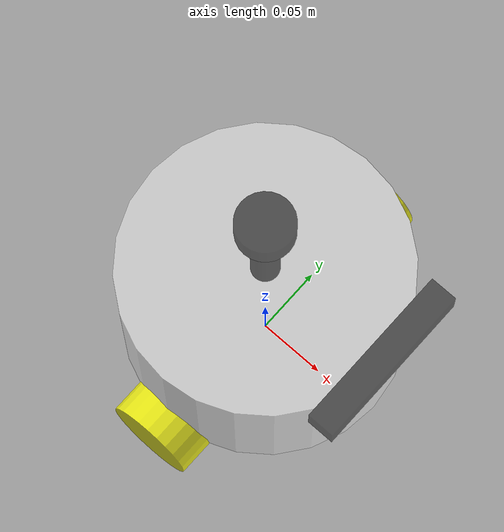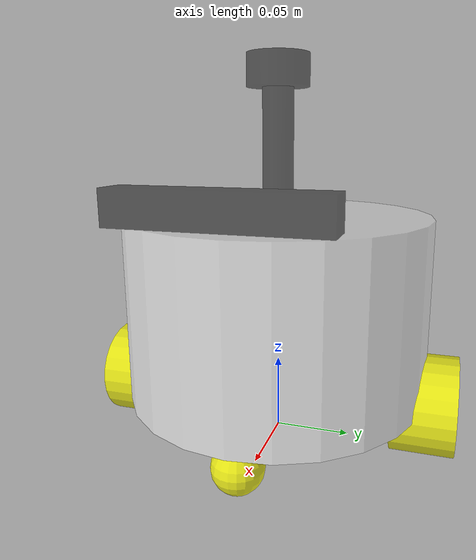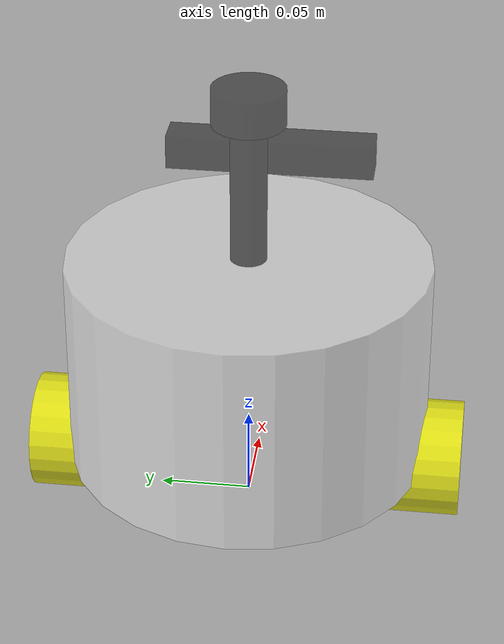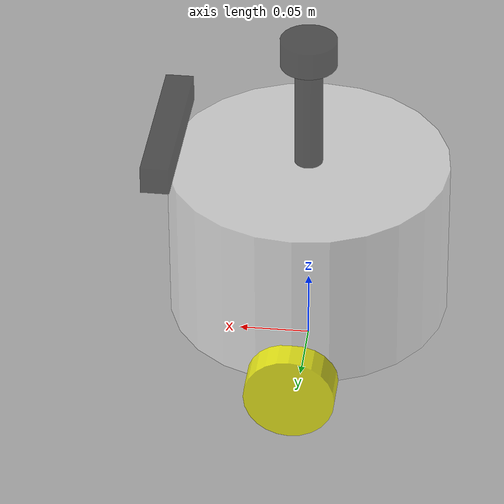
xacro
<?xml version="1.0"?>
<robot xmlns:xacro="http://www.ros.org/wiki/xacro" name="fishbot">
    <!-- base -->
    <xacro:include filename="$(find fishbot_description)/urdf/fishbot/base.urdf.xacro"/>
    <!-- sensor -->
    <xacro:include filename="$(find fishbot_description)/urdf/fishbot/sensor/camera.urdf.xacro"/>
    <xacro:include filename="$(find fishbot_description)/urdf/fishbot/sensor/imu.urdf.xacro"/>
    <xacro:include filename="$(find fishbot_description)/urdf/fishbot/sensor/laser.urdf.xacro"/>
    <!-- actuator -->
    <xacro:include filename="$(find fishbot_description)/urdf/fishbot/actuator/wheel.urdf.xacro"/>
    <xacro:include filename="$(find fishbot_description)/urdf/fishbot/actuator/caster.urdf.xacro"/>
    <!--plugins-->
    <xacro:include filename="$(find fishbot_description)/urdf/fishbot/plugins/gazebo_control_plugin.xacro"/>
    <xacro:include filename="$(find fishbot_description)/urdf/fishbot/plugins/gazebo_sensor_plugin.xacro"/>

    <xacro:base_xacro length="0.12" radius="0.1"/>
    <xacro:imu_xacro xyz="0.0 0.0 0.02"/>
    <xacro:camera_xacro xyz="0.10 0.0 0.075"/>
    <xacro:laser_xacro xyz="0.0 0.0 0.10"/>

    <xacro:wheel_xacro wheel_name="left_wheel" xyz="0 0.1 -0.06"/>
    <xacro:wheel_xacro wheel_name="right_wheel" xyz="0 -0.1 -0.06"/>
    <xacro:caster_xacro caster_name="front_caster" xyz="0.08 0.0 -0.076"/>
    <xacro:caster_xacro caster_name="back_caster" xyz="0.08 0.0 -0.076"/>
    <!-- Add additional links, joints, and macros as needed -->

    <xacro:gazebo_control_plugin />
    <xacro:gazebo_sensor_plugin />

</robot>

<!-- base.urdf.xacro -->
<robot xmlns:xacro="http://www.ros.org/wiki/xacro">

    <xacro:include filename="$(find fishbot_description)/urdf/fishbot/common_inertia.xacro"/>

    <xacro:macro name="base_xacro" params = "length radius" >
        <link name="base_footprint"/>

        <link name="base_link">
            <visual>
                <origin xyz="0.0 0.0 0.0" rpy="0.0 0.0 0.0"/>

                <geometry>
                    <cylinder radius="${radius}" length="${length}"/>
                </geometry>

                <material name="white">
                    <color rgba="1.0 1.0 1.0 0.5"/>
                </material>
            </visual>
            <collision>
                <origin xyz="0.0 0.0 0.0" rpy="0.0 0.0 0.0"/>

                <geometry>
                    <cylinder radius="${radius}" length="${length}"/>
                </geometry>

                <material name="white">
                    <color rgba="1.0 1.0 1.0 0.5"/>
                </material>
            </collision>

            <xacro:cylinder_inertia m="1.0" r="${radius}" h="${length}"/>
        </link>
        <joint name="base_footprint_joint" type="fixed">
            <parent link="base_footprint"/>
            <child link="base_link"/>
            <origin xyz="0.0 0.0 ${length/2.0+0.032-0.001}" rpy="0.0 0.0 0.0"/>
        </joint>

    </xacro:macro>
</robot>

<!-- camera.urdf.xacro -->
<robot xmlns:xacro="http://www.ros.org/wiki/xacro" >
        <xacro:include filename="$(find fishbot_description)/urdf/fishbot/common_inertia.xacro"/>

    <!--IMU-->
    <xacro:macro name="camera_xacro" params = "xyz" >

        <link name="camera_link">
            <visual>
                <origin xyz="0.0 0.0 0.0" rpy="0.0 0.0 0.0"/>

                <geometry>
                    <box size="0.02 0.12 0.02"/>
                </geometry>

                <material name="blue">
                    <color rgba="0.0 0.0 0.0 0.5"/>
                </material>
            </visual>

            <collision>
                <origin xyz="0.0 0.0 0.0" rpy="0.0 0.0 0.0"/>

                <geometry>
                    <box size="0.02 0.12 0.02"/>
                </geometry>

                <material name="blue">
                    <color rgba="0.0 0.0 0.0 0.5"/>
                </material>
            </collision>
            <xacro:box_inertia m="0.1" w="0.02" h="0.10" d="0.02"/>
        </link>

        <link name="camera_optical_link">
        </link>

        <joint name="camera_joint" type="fixed">
            <parent link="base_link"/>
            <child link="camera_link"/>
            <origin xyz="${xyz}" rpy="0.0 0.0 0.0"/>

        </joint>

        <joint name="camera_optical_joint" type="fixed">
            <parent link="camera_link"/>
            <child link="camera_optical_link"/>
            <origin xyz="0.0 0.0 0.0" rpy="${-pi/2} 0.0 ${-pi/2}"/>
        </joint>
    </xacro:macro>

</robot>

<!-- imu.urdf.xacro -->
<robot xmlns:xacro="http://www.ros.org/wiki/xacro" >
        <xacro:include filename="$(find fishbot_description)/urdf/fishbot/common_inertia.xacro"/>

    <!--IMU-->
    <xacro:macro name="imu_xacro" params = "xyz" >

        <link name="imu_link">
            <visual>
                <origin xyz="0.0 0.0 0.0" rpy="0.0 0.0 0.0"/>

                <geometry>
                    <box size="0.02 0.02 0.02"/>
                </geometry>

                <material name="blue">
                    <color rgba="0.0 0.0 0.0 0.5"/>
                </material>
            </visual>
            <collision>
                <origin xyz="0.0 0.0 0.0" rpy="0.0 0.0 0.0"/>

                <geometry>
                    <box size="0.02 0.02 0.02"/>
                </geometry>

                <material name="blue">
                    <color rgba="0.0 0.0 0.0 0.5"/>
                </material>
            </collision>
            <xacro:box_inertia m="0.05" w="0.02" h="0.02" d="0.02"/>
        </link>

        <joint name="imu_joint" type="fixed">
            <parent link="base_link"/>
            <child link="imu_link"/>
            <origin xyz="${xyz}" rpy="0.0 0.0 0.0"/>

        </joint>
    </xacro:macro>

</robot>

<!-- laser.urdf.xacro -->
<robot xmlns:xacro="http://www.ros.org/wiki/xacro" >
    <xacro:include filename="$(find fishbot_description)/urdf/fishbot/common_inertia.xacro"/>

    <!--IMU-->
    <xacro:macro name="laser_xacro" params = "xyz" >

        <link name="laser_cylinder_link">
            <visual>
                <origin xyz="0.0 0.0 0.0" rpy="0.0 0.0 0.0"/>

                <geometry>
                    <cylinder radius="0.01" length="0.10"/>
                </geometry>

                <material name="black">
                    <color rgba="0.0 0.0 0.0 0.5"/>
                </material>
            </visual>
            <collision>
                <origin xyz="0.0 0.0 0.0" rpy="0.0 0.0 0.0"/>

                    <geometry>
                        <cylinder radius="0.01" length="0.10"/>
                    </geometry>

                    <material name="black">
                        <color rgba="0.0 0.0 0.0 0.5"/>
                    </material>
            </collision>
            <xacro:cylinder_inertia m="0.05" r="0.01" h="0.10"/>
        </link>

        <link name="laser_link">
            <visual>
                <origin xyz="0.0 0.0 0.0" rpy="0.0 0.0 0.0"/>

                <geometry>
                    <cylinder radius="0.02" length="0.02"/>
                </geometry>

                <material name="black">
                    <color rgba="0.0 0.0 0.0 0.5"/>
                </material>
            </visual>
            <collision>
                <origin xyz="0.0 0.0 0.0" rpy="0.0 0.0 0.0"/>

                    <geometry>
                        <cylinder radius="0.02" length="0.02"/>
                    </geometry>

                    <material name="black">
                        <color rgba="0.0 0.0 0.0 0.5"/>
                    </material>
            </collision>
            <xacro:cylinder_inertia m="0.10" r="0.02" h="0.02"/>
        </link>

        <joint name="laser_joint" type="fixed">
            <parent link="laser_cylinder_link"/>
            <child link="laser_link"/>
            <origin xyz="0.0 0.0 0.05" rpy="0.0 0.0 0.0"/>
        </joint>

        <joint name="laser_cylinder_joint" type="fixed">
            <parent link="base_link"/>
            <child link="laser_cylinder_link"/>
            <origin xyz="${xyz}" rpy="0.0 0.0 0.0"/>
        </joint>

        <gazebo reference="laser_cylinder_link" >
            <material>Gazebo/Black</material>
        </gazebo>
        <gazebo reference="laser_link">
            <material>Gazebo/Black</material>
        </gazebo>

    </xacro:macro>

</robot>

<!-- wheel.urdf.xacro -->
<robot xmlns:xacro="http://www.ros.org/wiki/xacro">
    <xacro:include filename="$(find fishbot_description)/urdf/fishbot/common_inertia.xacro"/>
    <xacro:macro name="wheel_xacro" params = "wheel_name xyz">

        <link name="${wheel_name}_link">
            <visual>
                <origin xyz="0.0 0.0 0.0" rpy="1.57079 0.0 0.0"/>

                <geometry>
                    <cylinder radius="0.032" length="0.04"/>
                </geometry>

                <material name="yellow">
                    <color rgba="1.0 1.0 0.0 0.8"/>
                </material>
            </visual>
            <collision>
                <origin xyz="0.0 0.0 0.0" rpy="1.57079 0.0 0.0"/>

                <geometry>
                    <cylinder radius="0.032" length="0.04"/>
                </geometry>

                <material name="yellow">
                    <color rgba="1.0 1.0 0.0 0.8"/>
                </material>
            </collision>
            <xacro:cylinder_inertia m="0.05" r="0.032" h="0.04"/>
        </link>

        <joint name="${wheel_name}_joint" type="continuous">
                <parent link="base_link"/>
                <child link="${wheel_name}_link"/>
                <origin xyz="${xyz}" rpy="0.0 0.0 0.0"/>
                <axis xyz = "0 1 0"/>
        </joint>

        <gazebo reference="${wheel_name}_link">
            <mu1 value="20.0"/>
            <mu1 value="20.0"/>
            <kp value="100000000.0"/>
            <kd value="1.0"/>
        </gazebo>
    </xacro:macro>

</robot>

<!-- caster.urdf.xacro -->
<robot xmlns:xacro="http://www.ros.org/wiki/xacro">
        <xacro:include filename="$(find fishbot_description)/urdf/fishbot/common_inertia.xacro"/>
    <xacro:macro name="caster_xacro" params = "caster_name xyz">

        <link name="${caster_name}_link">
            <visual>
                <origin xyz="0.0 0.0 0.0" rpy="0.0 0.0 0.0"/>

                <geometry>
                    <sphere radius="0.016"/>
                </geometry>

                <material name="yellow">
                    <color rgba="1.0 1.0 0.0 0.8"/>
                </material>
            </visual>
            <collision>
                <origin xyz="0.0 0.0 0.0" rpy="0.0 0.0 0.0"/>

                <geometry>
                    <sphere radius="0.016"/>
                </geometry>

                    <material name="yellow">
                    <color rgba="1.0 1.0 0.0 0.8"/>
                    </material>
                </collision>
            <xacro:sphere_inertia m="0.05" r="0.016"/>
        </link>

        <collision>
            <origin xyz="0.0 0.0 0.0" rpy="0.0 0.0 0.0"/>

            <geometry>
                <sphere radius="0.016"/>
            </geometry>

            <material name="yellow">
                <color rgba="1.0 1.0 0.0 0.8"/>
            </material>
        </collision>

        <joint name="${caster_name}_joint" type="fixed">
                <parent link="base_link"/>
                <child link="${caster_name}_link"/>
                <origin xyz="${xyz}" rpy="0.0 0.0 0.0"/>
                <axis xyz = "0 1 0"/>
        </joint>

        <gazebo reference="${caster_name}_link">
            <mu1 value="1.0"/>
            <mu1 value="1.0"/>
            <kp value="100000000.0"/>
            <kd value="1.0"/>
        </gazebo>
    </xacro:macro>

</robot>
